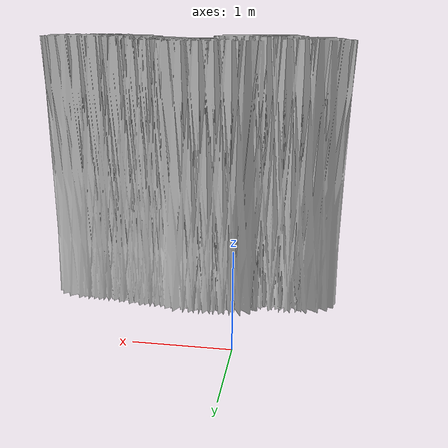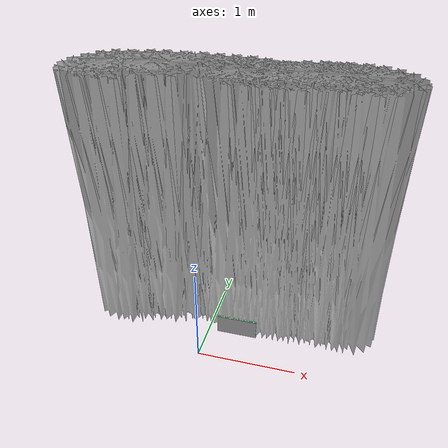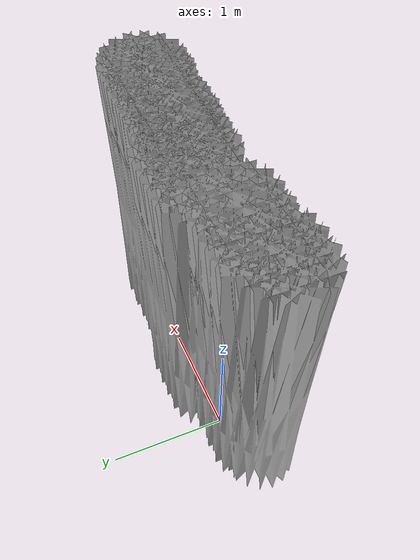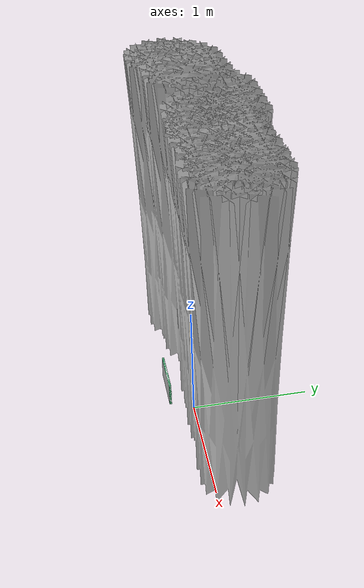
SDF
<?xml version="1.0" ?>
<sdf version="1.5">
  <model name="fire_exit_sign">
    <static>true</static>
    <link name="fire_exit_sign_link">
        <collision name="fire_exit_sign_collision">
         <geometry>
            <mesh>
                <uri>model://fire_exit_sign/meshes/model.dae</uri>
                <scale>0.5 0.5 0.5</scale>
            </mesh>
        </geometry>
      </collision>

      <visual name="fire_exit_sign_mesh">
        <cast_shadows>false</cast_shadows>
        <geometry>
            <mesh>
                <uri>model://fire_exit_sign/meshes/model.dae</uri>
                <scale>0.5 0.5 0.5</scale>
            </mesh>
        </geometry>
      </visual>
    </link>
  </model>
</sdf>
